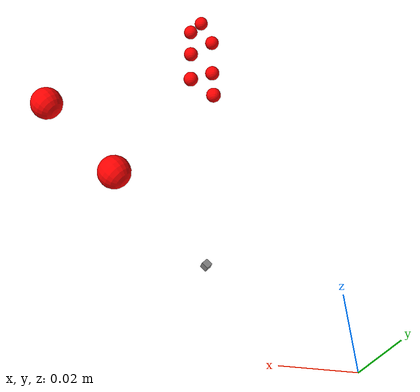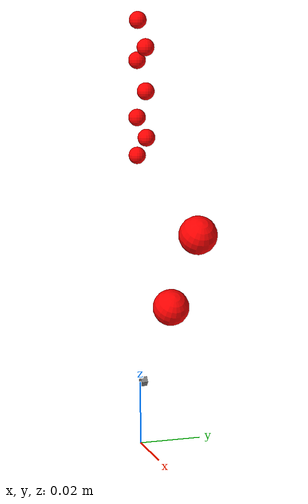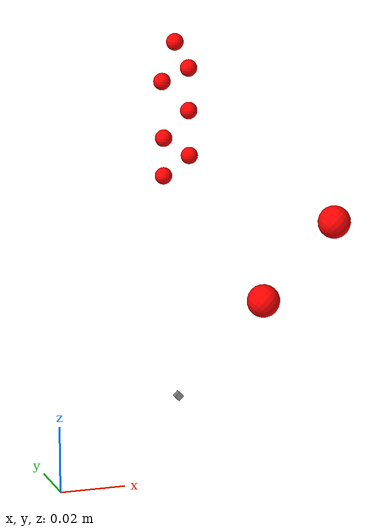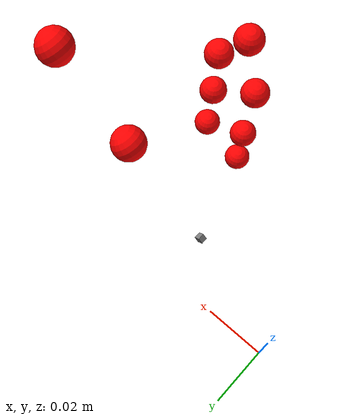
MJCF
<mujoco model="MuJoCo Model">
    <compiler angle="radian" meshdir="meshes/" texturedir="./mjcf/textures/" />
    <option apirate="200" iterations="20" />
    <size njmax="500" nconmax="100" nstack="600000" nuser_jnt="1" nuser_site="1" nuser_tendon="1" nuser_actuator="16" nuser_sensor="1" />
    <visual>
        <map force="0.1" fogend="5" />
    </visual>
    <default class="main">
        <default class="robot0:asset_class">
            <joint limited="true" margin="0.01" armature="0.001" damping="0.1" frictionloss="0.001" />
            <geom friction="1 0.005 0.001" margin="0.0005" />
            <site rgba="0.4 0.9 0.4 1" />
            <general ctrllimited="true" forcelimited="true" />
        </default>
        <default class="robot0:D_Touch">
            <site size="0.009 0.004 0.013" group="4" type="box" rgba="0.8 0.8 0.8 1" />
        </default>
        <default class="robot0:DC_Hand">
            <geom conaffinity="0" group="4" material="robot0:MatColl" />
        </default>
        <default class="robot0:free">
            <joint type="free" />
        </default>
    </default>
    <asset>
        <texture type="skybox" builtin="gradient" rgb1="0.44 0.85 0.56" rgb2="0.46 0.87 0.58" width="32" height="192" />
        <texture type="2d" name="robot0:texplane" builtin="checker" rgb1="0.2 0.3 0.4" rgb2="0.1 0.15 0.2" width="512" height="512" />
        <texture type="cube" name="robot0:texgeom" builtin="flat" mark="cross" rgb1="0.3 0.6 0.5" rgb2="0.3 0.6 0.5" width="127" height="762" />
        <material name="robot0:MatGnd" texture="robot0:texplane" texuniform="true" reflectance="0.5" />
        <material name="robot0:MatColl" specular="1" shininess="0.3" reflectance="0.5" rgba="0.4 0.5 0.6 0.5" />
        <material name="robot0:MatViz" specular="0.75" shininess="0.1" reflectance="0.5" rgba="0.93 0.93 0.93 1" />
        <material name="robot0:object" texture="robot0:texgeom" />
        <material name="floor_mat" specular="0" rgba="0.2 0.2 0.2 1" />
        <mesh name="robot0:forearm" file="forearm_electric.obj" />
        <mesh name="robot0:forearm_cvx" file="forearm_electric_cvx.obj" />
        <mesh name="robot0:wrist" file="wrist.obj" scale="0.001 0.001 0.001" />
        <mesh name="robot0:palm" file="palm.obj" scale="0.001 0.001 0.001" />
        <mesh name="robot0:knuckle" file="knuckle.obj" scale="0.001 0.001 0.001" />
        <mesh name="robot0:F3" file="F3.obj" scale="0.001 0.001 0.001" />
        <mesh name="robot0:F2" file="F2.obj" scale="0.001 0.001 0.001" />
        <mesh name="robot0:F1" file="F1.obj" scale="0.001 0.001 0.001" />
        <mesh name="robot0:lfmetacarpal" file="lfmetacarpal.obj" scale="0.001 0.001 0.001" />
        <mesh name="robot0:TH3_z" file="TH3_z.obj" scale="0.001 0.001 0.001" />
        <mesh name="robot0:TH2_z" file="TH2_z.obj" scale="0.001 0.001 0.001" />
        <mesh name="robot0:TH1_z" file="TH1_z.obj" scale="0.001 0.001 0.001" />
    </asset>
    <worldbody>
        <light name="light0" pos="0 1 4" dir="0 0 -1" directional="true" castshadow="false" ambient="0.2 0.2 0.2" diffuse="0.8 0.8 0.8" />
                    <body name="robot0:palm">
                        <inertial pos="0.006 0 0.036" quat="0.715833 0.0439898 0.0749825 0.692839" mass="0.3" diaginertia="0.001 0.001 0.001" />
                        <geom name="robot0:C_palm0" class="robot0:DC_Hand" size="0.032 0.0111 0.049" pos="0.011 0 0.038" type="box" rgba="0.4 0.5 0.6 0.5" />
                        <geom name="robot0:C_palm1" class="robot0:DC_Hand" size="0.011 0.0111 0.025" pos="-0.032 0 0.014" type="box" rgba="0.4 0.5 0.6 0.5" />
                        <body name="robot0:ffknuckle" pos="0.033 0 0.095">
                            <inertial pos="0 0 0" quat="0.520062 0.854102 0.00600072 -0.00300036" mass="0.008" diaginertia="1e-05 1e-05 1e-05" />
                            <joint name="robot0:FFJ3" pos="0 0 0" axis="0 1 0" range="-0.349 0.349" user="1103" />
                            <body name="robot0:ffproximal" pos="0 0 0">
                                <inertial pos="0 0 0.023" quat="0.707095 -0.00400054 0.00400054 0.707095" mass="0.014" diaginertia="1e-05 1e-05 1e-05" />
                                <joint name="robot0:FFJ2" pos="0 0 0" axis="1 0 0" range="0 1.571" user="1102" />
                                <geom name="robot0:C_ffproximal" class="robot0:DC_Hand" size="0.01 0.0225" pos="0 0 0.0225" type="capsule" />
                                <!-- CONACT POINT -->
                                <geom type="sphere" size="0.0025" rgba="1 0 0 1" pos="-0.0002376327756792307 -0.009996689856052399 0.038666076958179474"/>
                                <geom type="sphere" size="0.0025" rgba="1 0 0 1" pos="-0.0035445429384708405 -0.009337972849607468 4.728326530312188e-05"/>
                                <geom type="sphere" size="0.0025" rgba="1 0 0 1" pos="0.0042730518616735935 -0.0090293288230896 0.018686404451727867"/>
                                <geom type="sphere" size="0.0025" rgba="1 0 0 1" pos="-0.003900623880326748 -0.009198302403092384 0.027359312400221825"/>
                                <geom type="sphere" size="0.0025" rgba="1 0 0 1" pos="-0.0034948040265589952 -0.009357482194900513 0.011004473082721233"/>
                                <geom type="sphere" size="0.0025" rgba="1 0 0 1" pos="0.004485304467380047 -0.008933592587709427 0.005608899053186178"/>
                                <geom type="sphere" size="0.0025" rgba="1 0 0 1" pos="0.00421907939016819 -0.009053671732544899 0.030992764979600906"/>

                                <body name="robot0:ffmiddle" pos="0 0 0.045">
                                    <inertial pos="0 0 0.011" quat="0.707107 0 0 0.707107" mass="0.012" diaginertia="1e-05 1e-05 1e-05" />
                                    <joint name="robot0:FFJ1" pos="0 0 0" axis="1 0 0" range="0 1.571" user="1101" />
                                    <geom name="robot0:C_ffmiddle" class="robot0:DC_Hand" size="0.00805 0.0125" pos="0 0 0.0125" type="capsule" />
                                    <!-- CONACT POINT -->
                                    <body name="robot0:ffdistal" pos="0 0 0.025">
                                        <inertial pos="0 0 0.015" quat="0.7071 -0.00300043 0.00300043 0.7071" mass="0.01" diaginertia="1e-05 1e-05 1e-05" />
                                        <joint name="robot0:FFJ0" pos="0 0 0" axis="1 0 0" range="0 1.571" user="1100" />
                                        <geom name="robot0:C_ffdistal" class="robot0:DC_Hand" size="0.00705 0.012" pos="0 0 0.012" type="capsule" condim="4" />
                                        <site name="robot0:S_fftip" pos="0 0 0.026" group="3" />
                                        <site name="robot0:Tch_fftip" class="robot0:D_Touch" pos="0 -0.004 0.018" />
                                        <!-- CONACT POINT -->
                                    </body>
                                </body>
                            </body>
                        </body>
                        <body name="robot0:mfknuckle" pos="0.011 0 0.099">
                            <inertial pos="0 0 0" quat="0.520062 0.854102 0.00600072 -0.00300036" mass="0.008" diaginertia="1e-05 1e-05 1e-05" />
                            <joint name="robot0:MFJ3" pos="0 0 0" axis="0 1 0" range="-0.349 0.349" user="1107" />
                            <body name="robot0:mfproximal" pos="0 0 0">
                                <inertial pos="0 0 0.023" quat="0.707095 -0.00400054 0.00400054 0.707095" mass="0.014" diaginertia="1e-05 1e-05 1e-05" />
                                <joint name="robot0:MFJ2" pos="0 0 0" axis="1 0 0" range="0 1.571" user="1106" />
                                <geom name="robot0:C_mfproximal" class="robot0:DC_Hand" size="0.01 0.0225" pos="0 0 0.0225" type="capsule" />
                                <body name="robot0:mfmiddle" pos="0 0 0.045">
                                    <inertial pos="0 0 0.012" quat="0.707107 0 0 0.707107" mass="0.012" diaginertia="1e-05 1e-05 1e-05" />
                                    <joint name="robot0:MFJ1" pos="0 0 0" axis="1 0 0" range="0 1.571" user="1105" />
                                    <geom name="robot0:C_mfmiddle" class="robot0:DC_Hand" size="0.00805 0.0125" pos="0 0 0.0125" type="capsule" />
                                    <body name="robot0:mfdistal" pos="0 0 0.025">
                                        <inertial pos="0 0 0.015" quat="0.7071 -0.00300043 0.00300043 0.7071" mass="0.01" diaginertia="1e-05 1e-05 1e-05" />
                                        <joint name="robot0:MFJ0" pos="0 0 0" axis="1 0 0" range="0 1.571" user="1104" />
                                        <geom name="robot0:C_mfdistal" class="robot0:DC_Hand" size="0.00705 0.012" pos="0 0 0.012" type="capsule" condim="4" />
                                        <site name="robot0:S_mftip" pos="0 0 0.026" group="3" />
                                        <site name="robot0:Tch_mftip" class="robot0:D_Touch" pos="0 -0.004 0.018" />
                                    </body>
                                </body>
                            </body>
                        </body>
                        <body name="robot0:rfknuckle" pos="-0.011 0 0.095">
                            <inertial pos="0 0 0" quat="0.520062 0.854102 0.00600072 -0.00300036" mass="0.008" diaginertia="1e-05 1e-05 1e-05" />
                            <joint name="robot0:RFJ3" pos="0 0 0" axis="0 1 0" range="-0.349 0.349" user="1111" />
                            <body name="robot0:rfproximal" pos="0 0 0">
                                <inertial pos="0 0 0.023" quat="0.707095 -0.00400054 0.00400054 0.707095" mass="0.014" diaginertia="1e-05 1e-05 1e-05" />
                                <joint name="robot0:RFJ2" pos="0 0 0" axis="1 0 0" range="0 1.571" user="1110" />
                                <geom name="robot0:C_rfproximal" class="robot0:DC_Hand" size="0.01 0.0225" pos="0 0 0.0225" type="capsule" />
                                <body name="robot0:rfmiddle" pos="0 0 0.045">
                                    <inertial pos="0 0 0.012" quat="0.707107 0 0 0.707107" mass="0.012" diaginertia="1e-05 1e-05 1e-05" />
                                    <joint name="robot0:RFJ1" pos="0 0 0" axis="1 0 0" range="0 1.571" user="1109" />
                                    <geom name="robot0:C_rfmiddle" class="robot0:DC_Hand" size="0.00805 0.0125" pos="0 0 0.0125" type="capsule" />
                                    <body name="robot0:rfdistal" pos="0 0 0.025">
                                        <inertial pos="0 0 0.015" quat="0.7071 -0.00300043 0.00300043 0.7071" mass="0.01" diaginertia="1e-05 1e-05 1e-05" />
                                        <joint name="robot0:RFJ0" pos="0 0 0" axis="1 0 0" range="0 1.571" user="1108" />
                                        <geom name="robot0:C_rfdistal" class="robot0:DC_Hand" size="0.00705 0.012" pos="0 0 0.012" type="capsule" condim="4" />
                                        <site name="robot0:S_rftip" pos="0 0 0.026" group="3" />
                                        <site name="robot0:Tch_rftip" class="robot0:D_Touch" pos="0 -0.004 0.018" />
                                    </body>
                                </body>
                            </body>
                        </body>
                        <body name="robot0:lfmetacarpal" pos="-0.017 0 0.044">
                            <inertial pos="-0.014 0.001 0.014" quat="0.709167 -0.0920216 -0.0630148 0.696164" mass="0.075" diaginertia="1e-05 1e-05 1e-05" />
                            <joint name="robot0:LFJ4" pos="0 0 0" axis="0.570977 0 0.820966" range="0 0.785" user="1116" />
                            <geom name="robot0:C_lfmetacarpal" class="robot0:DC_Hand" size="0.0095 0.0111 0.025" pos="-0.0165 0 0.01" type="box" rgba="0.4 0.5 0.6 1" />
                            <body name="robot0:lfknuckle" pos="-0.017 0 0.044">
                                <inertial pos="0 0 0" quat="0.520062 0.854102 0.00600072 -0.00300036" mass="0.008" diaginertia="1e-05 1e-05 1e-05" />
                                <joint name="robot0:LFJ3" pos="0 0 0" axis="0 1 0" range="-0.349 0.349" user="1115" />
                                <body name="robot0:lfproximal" pos="0 0 0">
                                    <inertial pos="0 0 0.023" quat="0.707095 -0.00400054 0.00400054 0.707095" mass="0.014" diaginertia="1e-05 1e-05 1e-05" />
                                    <joint name="robot0:LFJ2" pos="0 0 0" axis="1 0 0" range="0 1.571" user="1114" />
                                    <geom name="robot0:C_lfproximal" class="robot0:DC_Hand" size="0.01 0.0225" pos="0 0 0.0225" type="capsule" />
                                    <body name="robot0:lfmiddle" pos="0 0 0.045">
                                        <inertial pos="0 0 0.012" quat="0.707107 0 0 0.707107" mass="0.012" diaginertia="1e-05 1e-05 1e-05" />
                                        <joint name="robot0:LFJ1" pos="0 0 0" axis="1 0 0" range="0 1.571" user="1113" />
                                        <geom name="robot0:C_lfmiddle" class="robot0:DC_Hand" size="0.00805 0.0125" pos="0 0 0.0125" type="capsule" />
                                        <body name="robot0:lfdistal" pos="0 0 0.025">
                                            <inertial pos="0 0 0.015" quat="0.7071 -0.00300043 0.00300043 0.7071" mass="0.01" diaginertia="1e-05 1e-05 1e-05" />
                                            <joint name="robot0:LFJ0" pos="0 0 0" axis="1 0 0" range="0 1.571" user="1112" />
                                            <geom name="robot0:C_lfdistal" class="robot0:DC_Hand" size="0.00705 0.012" pos="0 0 0.012" type="capsule" condim="4" />
                                            <site name="robot0:S_lftip" pos="0 0 0.026" group="3" />
                                            <site name="robot0:Tch_lftip" class="robot0:D_Touch" pos="0 -0.004 0.018" />
                                        </body>
                                    </body>
                                </body>
                            </body>
                        </body>
                        <body name="robot0:thbase" pos="0.034 -0.009 0.029" quat="0.923956 0 0.382499 0">
                            <inertial pos="0 0 0" mass="0.01" diaginertia="1e-05 1e-05 1e-05" />
                            <joint name="robot0:THJ4" pos="0 0 0" axis="0 0 -1" range="-1.047 1.047" user="1121" />
                            <geom name="robot0:V_thbase" size="0.001 0.001 0.001" type="box" group="1" />
                            <body name="robot0:thproximal" pos="0 0 0">
                                <inertial pos="0 0 0.017" quat="0.981604 0 0.000999597 0.190923" mass="0.016" diaginertia="1e-05 1e-05 1e-05" />
                                <joint name="robot0:THJ3" pos="0 0 0" axis="1 0 0" range="0 1.222" user="1120" />
                                <geom name="robot0:C_thproximal" class="robot0:DC_Hand" size="0.013 0.019" pos="0 0 0.019" type="capsule" rgba="0.4 0.5 0.6 0.5" />
                                <!-- CONACT POINT -->
                                <geom type="sphere" size="0.005" rgba="1 0 0 1" pos="0 0 0.038"/>
                                <body name="robot0:thhub" pos="0 0 0.038">
                                    <inertial pos="0 0 0" mass="0.002" diaginertia="1e-05 1e-05 1e-05" />
                                    <joint name="robot0:THJ2" pos="0 0 0" axis="1 0 0" range="-0.209 0.209" user="1119" />
                                    <geom name="robot0:V_thhub" size="0.001 0.001 0.001" type="box" group="1" />
                                    <body name="robot0:thmiddle" pos="0 0 0">
                                        <inertial pos="0 0 0.016" quat="0.999971 -0.000999971 -0.00699979 0.00299991" mass="0.016" diaginertia="1e-05 1e-05 1e-05" />
                                        <joint name="robot0:THJ1" pos="0 0 0" axis="0 1 0" range="-0.524 0.524" user="1118" />
                                        <geom name="robot0:C_thmiddle" class="robot0:DC_Hand" size="0.011 0.016" pos="0 0 0.016" type="capsule" />
                                        <!-- CONACT POINT -->
                                        <geom type="sphere" size="0.005" rgba="1 0 0 1" pos="0 0 0.032"/>
                                        <body name="robot0:thdistal" pos="0 0 0.032">
                                            <inertial pos="0 0 0.016" quat="0.99887 -0.00499935 -0.0469939 0.00499935" mass="0.016" diaginertia="1e-05 1e-05 1e-05" />
                                            <joint name="robot0:THJ0" pos="0 0 0" axis="0 1 0" range="-1.571 0" user="1117" />
                                            <geom name="robot0:C_thdistal" class="robot0:DC_Hand" size="0.00918 0.013" pos="0 0 0.013" type="capsule" condim="4" />
                                            <site name="robot0:S_thtip" pos="0 0 0.0275" group="3" />
                                            <site name="robot0:Tch_thtip" class="robot0:D_Touch" pos="-0.005 0 0.02" size="0.005 0.011 0.016" />
                                        </body>
                                    </body>
                                </body>
                            </body>
                        </body>
                    </body>

        <!-- PENETRATION POINTS -->

    </worldbody>
    <contact>
        <pair geom1="robot0:C_palm0" geom2="robot0:C_thdistal" condim="1" />
        <pair geom1="robot0:C_ffproximal" geom2="robot0:C_mfproximal" condim="1" />
        <pair geom1="robot0:C_ffproximal" geom2="robot0:C_thdistal" condim="1" />
        <pair geom1="robot0:C_ffmiddle" geom2="robot0:C_thdistal" condim="1" />
        <pair geom1="robot0:C_ffdistal" geom2="robot0:C_mfdistal" condim="1" />
        <pair geom1="robot0:C_ffdistal" geom2="robot0:C_thdistal" condim="1" />
        <pair geom1="robot0:C_mfproximal" geom2="robot0:C_rfproximal" condim="1" />
        <pair geom1="robot0:C_mfproximal" geom2="robot0:C_thdistal" condim="1" />
        <pair geom1="robot0:C_mfdistal" geom2="robot0:C_rfdistal" condim="1" />
        <pair geom1="robot0:C_mfdistal" geom2="robot0:C_lfdistal" condim="1" />
        <pair geom1="robot0:C_mfdistal" geom2="robot0:C_thdistal" condim="1" />
        <pair geom1="robot0:C_rfproximal" geom2="robot0:C_lfproximal" condim="1" />
        <pair geom1="robot0:C_rfmiddle" geom2="robot0:C_lfmiddle" condim="1" />
        <pair geom1="robot0:C_rfmiddle" geom2="robot0:C_lfdistal" condim="1" />
        <pair geom1="robot0:C_rfdistal" geom2="robot0:C_lfmiddle" condim="1" />
        <pair geom1="robot0:C_rfdistal" geom2="robot0:C_lfdistal" condim="1" />
        <pair geom1="robot0:C_rfdistal" geom2="robot0:C_lfdistal" condim="1" />
        <pair geom1="robot0:C_rfdistal" geom2="robot0:C_thdistal" condim="1" />
        <pair geom1="robot0:C_lfdistal" geom2="robot0:C_thdistal" condim="1" />
    </contact>
    <tendon>
        <fixed name="robot0:T_FFJ1c" limited="true" range="-0.001 0.001">
            <joint joint="robot0:FFJ0" coef="0.00705" />
            <joint joint="robot0:FFJ1" coef="-0.00805" />
        </fixed>
        <fixed name="robot0:T_MFJ1c" limited="true" range="-0.001 0.001">
            <joint joint="robot0:MFJ0" coef="0.00705" />
            <joint joint="robot0:MFJ1" coef="-0.00805" />
        </fixed>
        <fixed name="robot0:T_RFJ1c" limited="true" range="-0.001 0.001">
            <joint joint="robot0:RFJ0" coef="0.00705" />
            <joint joint="robot0:RFJ1" coef="-0.00805" />
        </fixed>
        <fixed name="robot0:T_LFJ1c" limited="true" range="-0.001 0.001">
            <joint joint="robot0:LFJ0" coef="0.00705" />
            <joint joint="robot0:LFJ1" coef="-0.00805" />
        </fixed>
    </tendon>
</mujoco>
